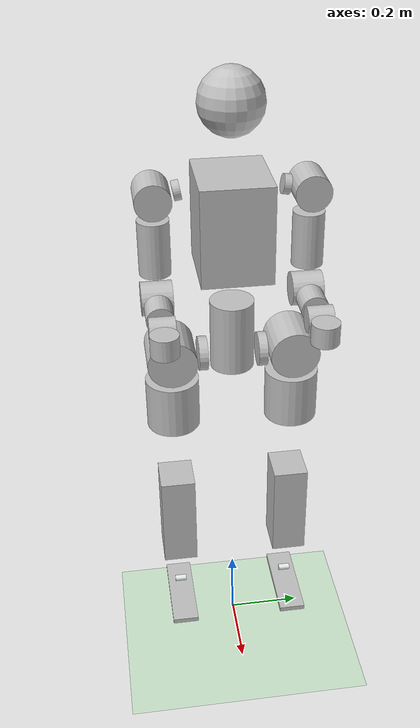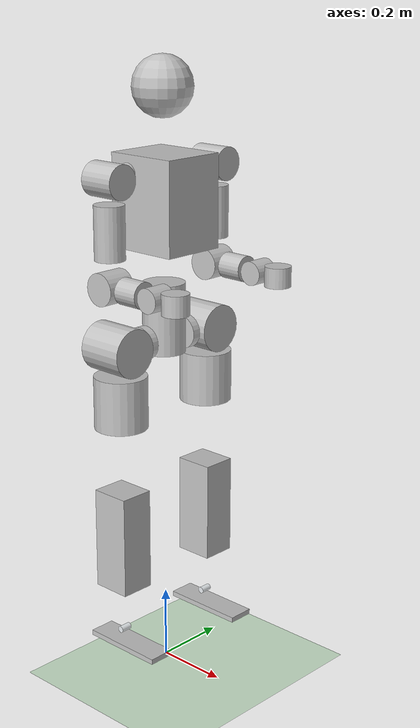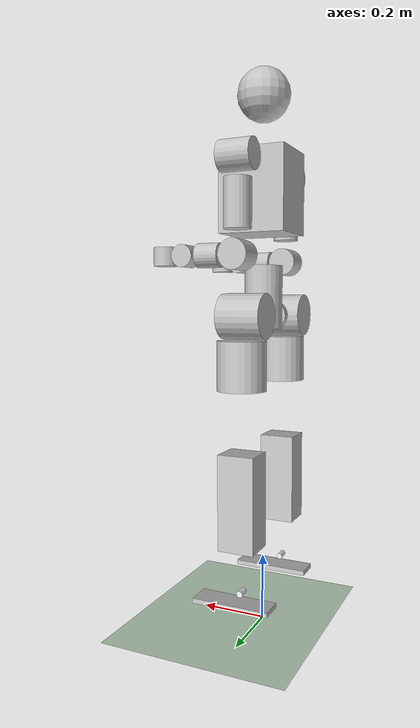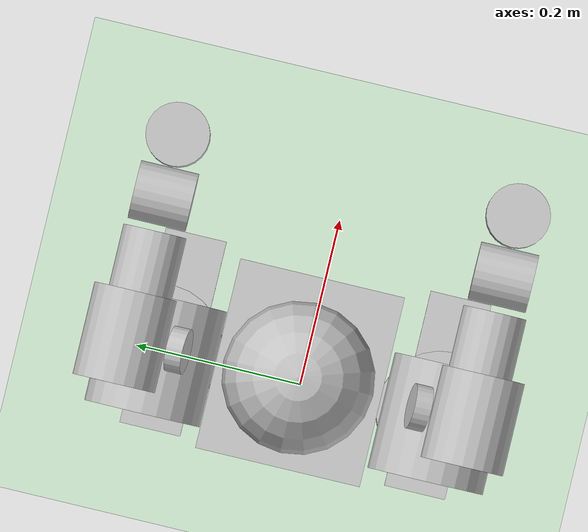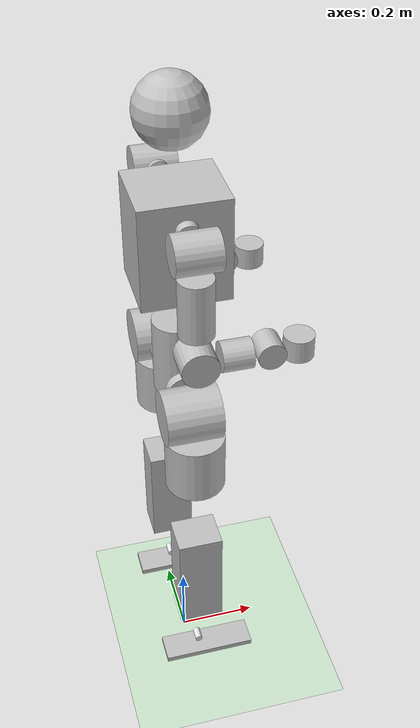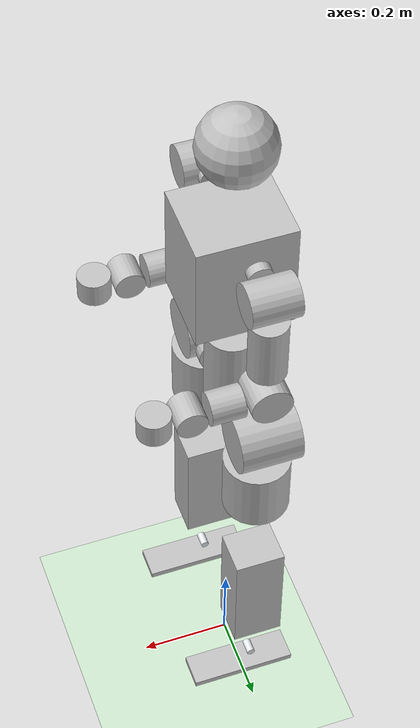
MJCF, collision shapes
<mujoco model="lus2">
    <compiler angle="radian" meshdir="../meshes/"/>

    <default>
        <default class="lus2">
            <geom friction="0.5" margin="0.001"/>
            <joint type="hinge" damping="1" armature="0.1" frictionloss="0.1" limited="true"/>
            <motor ctrlrange="-200 200" />
            <default class="visual">
                <geom type="mesh" contype="0" conaffinity="0" group="2" material="dark"/>
            </default>
            <default class="collision">
                <geom group="0" type="capsule" mass="0" density="0" />
                <default class="foot">
                    <geom type="sphere" priority="1" solimp="0.015 1 0.031" condim="6"  friction="0.8 0.02 0.01" size="0.025" pos="0.019 0 -0.105" quat="1 0 0 0" rgba="0.189804 0.176471 0.129412 1" />
                </default>
            </default>
            <site size="0.001" rgba="0.5 0.5 0.5 0.3" group="4"/>
        </default>
    </default>

    <asset>
        <mesh name="pelvis" content_type="model/stl" file="pelvis.STL"/>
        <mesh name="left_hip_pitch_link" content_type="model/stl" file="left_hip_pitch_link.STL"/>
        <mesh name="left_hip_roll_link" content_type="model/stl" file="left_hip_roll_link.STL"/>
        <mesh name="left_hip_yaw_link" content_type="model/stl" file="left_hip_yaw_link.STL"/>
        <mesh name="left_knee_link" content_type="model/stl" file="left_knee_link.STL"/>
        <mesh name="left_ankle_pitch_link" content_type="model/stl" file="left_ankle_pitch_link.STL"/>
        <mesh name="left_ankle_roll_link" content_type="model/stl" file="left_ankle_roll_link.STL"/>
        <mesh name="right_hip_pitch_link" content_type="model/stl" file="right_hip_pitch_link.STL"/>
        <mesh name="right_hip_roll_link" content_type="model/stl" file="right_hip_roll_link.STL"/>
        <mesh name="right_hip_yaw_link" content_type="model/stl" file="right_hip_yaw_link.STL"/>
        <mesh name="right_knee_link" content_type="model/stl" file="right_knee_link.STL"/>
        <mesh name="right_ankle_pitch_link" content_type="model/stl" file="right_ankle_pitch_link.STL"/>
        <mesh name="right_ankle_roll_link" content_type="model/stl" file="right_ankle_roll_link.STL"/>
        <mesh name="torso_link" content_type="model/stl" file="torso_link.STL"/>
        <mesh name="head_link" content_type="model/stl" file="head_link.STL"/>
        <mesh name="left_shoulder_pitch_link" content_type="model/stl" file="left_shoulder_pitch_link.STL"/>
        <mesh name="left_shoulder_roll_link" content_type="model/stl" file="left_shoulder_roll_link.STL"/>
        <mesh name="left_shoulder_yaw_link" content_type="model/stl" file="left_shoulder_yaw_link.STL"/>
        <mesh name="left_elbow_link" content_type="model/stl" file="left_elbow_link.STL"/>
        <mesh name="left_wrist_yaw_link" content_type="model/stl" file="left_wrist_yaw_link.STL"/>
        <mesh name="left_wrist_pitch_link" content_type="model/stl" file="left_wrist_pitch_link.STL"/>
        <mesh name="left_wrist_roll_link" content_type="model/stl" file="left_wrist_roll_link.STL"/>
        <mesh name="right_shoulder_pitch_link" content_type="model/stl" file="right_shoulder_pitch_link.STL"/>
        <mesh name="right_shoulder_roll_link" content_type="model/stl" file="right_shoulder_roll_link.STL"/>
        <mesh name="right_shoulder_yaw_link" content_type="model/stl" file="right_shoulder_yaw_link.STL"/>
        <mesh name="right_elbow_link" content_type="model/stl" file="right_elbow_link.STL"/>
        <mesh name="right_wrist_yaw_link" content_type="model/stl" file="right_wrist_yaw_link.STL"/>
        <mesh name="right_wrist_pitch_link" content_type="model/stl" file="right_wrist_pitch_link.STL"/>
        <mesh name="right_wrist_roll_link" content_type="model/stl" file="right_wrist_roll_link.STL"/>

        <texture name="texplane" type="2d" builtin="checker" rgb1=".2 .3 .4" rgb2=".1 0.15 0.2" width="100" height="100"/>
        <material name="MatPlane" reflectance="0.5" texture="texplane" texrepeat="1 1" texuniform="true"/>
    </asset>

    <worldbody>

            <geom name="floor" friction="1 .1 .1" pos="0 0 0" size="500 500 0.125" type="plane" material="MatPlane" condim="3" conaffinity="1" contype="1" group="2" rgba="0.8 0.9 0.8 1"></geom>

            <light cutoff="100" diffuse="1 1 1" dir="-0 0 -1.3" directional="true" exponent="1" pos="0 0 1.3" specular=".1 .1 .1" castshadow="false"/>
            <body name="pelvis" pos="0 0 1.0" childclass="lus2">
                <inertial pos="-3.1659855E-03  0.0000000 -0.0930236E-01" quat="0.498303 0.499454 -0.500496 0.501741" mass="6.7964049" diaginertia="2.2011165e-02 3.9641975e-02 3.5762219e-02" />
                <joint name="floating_base_joint" type="free" limited="false" actuatorfrclimited="false"/>
                <site name='imu' size='0.01' pos='0.0 0 0.0'/>

                <!-- fill below content to finish urdf2mjcf -->

                <geom pos="0 0 0.1" quat="1 0 0 0" type="mesh" contype="0" conaffinity="0" group="1" density="0" rgba="0.752941 0.752941 0.752941 1" mesh="pelvis"/>
                <geom size="0.0572 0.09415" type="cylinder" rgba="0.752941 0.752941 0.752941 1"/>
                <body name="left_hip_pitch_link" pos="0 0.068 -0.056">
                    <inertial pos="-0.0201683 0.0822161 0" quat="0.704101 0.704101 0.0651255 0.0651255" mass="2.42773" diaginertia="0.00623422 0.00516186 0.00352913"/>
                    <joint name="left_hip_pitch_joint" pos="0 0 0" axis="0 1 0" range="-1.5 1.5" actuatorfrcrange="-380 380"/>
                    <geom type="mesh" contype="0" conaffinity="0" group="1" density="0" rgba="0.752941 0.752941 0.752941 1" mesh="left_hip_pitch_link"/>
                    <geom size="0.045 0.0117" pos="0 0.01 0" quat="0.707388 0.706825 0 0" type="cylinder" rgba="0.752941 0.752941 0.752941 1"/>
                    <body name="left_hip_roll_link" pos="0 0.092 0">
                        <inertial pos="-0.00231162 -0.00036364 -0.081422" quat="0.986446 -0.0128273 0.163575 0.00198067" mass="3.15516" diaginertia="0.0127869 0.0114832 0.00651926"/>
                        <joint name="left_hip_roll_joint" pos="0 0 0" axis="1 0 0" range="-0.25 2.8" actuatorfrcrange="-380 380"/>
                        <geom type="mesh" contype="0" conaffinity="0" group="1" density="0" rgba="0.752941 0.752941 0.752941 1" mesh="left_hip_roll_link"/>
                        <geom size="0.065 0.065" pos="-0.01 0 0" quat="0.707388 0 0.706825 0" type="cylinder" rgba="0.752941 0.752941 0.752941 1"/>
                        <body name="left_hip_yaw_link" pos="0 0 -0.1395">
                            <inertial pos="0.00642805 -0.00358464 -0.184496" quat="0.693667 -0.00118225 0.0183074 0.720062" mass="3.35223" diaginertia="0.0396254 0.0381203 0.0071533"/>
                            <joint name="left_hip_yaw_joint" pos="0 0 0" axis="0 0 1" range="-1.2 2.6" actuatorfrcrange="-380 380"/>
                            <geom type="mesh" contype="0" conaffinity="0" group="1" density="0" rgba="0.752941 0.752941 0.752941 1" mesh="left_hip_yaw_link"/>
                            <geom size="0.0708 0.071" type="cylinder" rgba="0.752941 0.752941 0.752941 1"/>
                            <body name="left_knee_link" pos="0 0 -0.26">
                                <inertial pos="0.00978041 -0.00121598 -0.110007" quat="0.690926 0.000275879 -0.0112168 0.722838" mass="5.38282" diaginertia="0.0720794 0.0710269 0.00814125"/>
                                <joint name="left_knee_joint" pos="0 0 0" axis="0 1 0" range="0 2.27" actuatorfrcrange="-380 380"/>
                                <geom type="mesh" contype="0" conaffinity="0" group="1" density="0" rgba="0.752941 0.752941 0.752941 1" mesh="left_knee_link"/>
                                <geom size="0.0545 0.0475 0.139" pos="0 0 -0.13" type="box" rgba="0.752941 0.752941 0.752941 1"/>
                                <body name="left_ankle_pitch_link" pos="0 0 -0.4">
                                    <inertial pos="-0.000310026 1.10617e-05 -0.0042516" quat="0.691176 0.691169 0.149264 -0.14927" mass="0.163759" diaginertia="5.58316e-05 5.50037e-05 2.3119e-05"/>
                                    <joint name="left_ankle_pitch_joint" pos="0 0 0" axis="0 1 0" range="-0.34 0.17" actuatorfrcrange="-200 200"/>
                                    <geom type="mesh" contype="0" conaffinity="0" group="1" density="0" rgba="0.898039 0.917647 0.929412 1" mesh="left_ankle_pitch_link"/>
                                    <geom size="0.009 0.016" quat="0.707388 0.706825 0 0" type="cylinder" rgba="0.898039 0.917647 0.929412 1"/>
                                    <body name="left_ankle_roll_link" pos="0 0 -0.01">
                                        <inertial pos="0.0178042 0 -0.022945" quat="0 0.734587 0 0.678514" mass="0.328402" diaginertia="0.00147826 0.00138491 0.000224893"/>
                                        <joint name="left_ankle_roll_joint" pos="0 0 0" axis="1 0 0" range="-0.26 0.26" actuatorfrcrange="-200 200"/>
                                        <geom type="mesh" contype="0" conaffinity="0" group="1" density="0" rgba="0.752941 0.752941 0.752941 1" mesh="left_ankle_roll_link"/>
                                        <geom size="0.1175 0.0365 0.00715" pos="0.025 0 -0.02585" type="box" rgba="0.752941 0.752941 0.752941 1"/>
                                    </body>
                                </body>
                            </body>
                        </body>
                    </body>
                </body>
                <body name="right_hip_pitch_link" pos="0 -0.068 -0.056">
                    <inertial pos="-0.0201683 -0.0822161 0" quat="0.704101 0.704101 -0.0651255 -0.0651255" mass="2.42773" diaginertia="0.00623422 0.00516186 0.00352913"/>
                    <joint name="right_hip_pitch_joint" pos="0 0 0" axis="0 1 0" range="-1.5 1.5" actuatorfrcrange="-380 380"/>
                    <geom type="mesh" contype="0" conaffinity="0" group="1" density="0" rgba="0.752941 0.752941 0.752941 1" mesh="right_hip_pitch_link"/>
                    <geom size="0.045 0.0117" pos="0 -0.01 0" quat="0.707388 0.706825 0 0" type="cylinder" rgba="0.752941 0.752941 0.752941 1"/>
                    <body name="right_hip_roll_link" pos="0 -0.092 0">
                        <inertial pos="-0.00231164 0.000363676 -0.0814221" quat="0.986446 0.0128271 0.163575 -0.00197953" mass="3.15516" diaginertia="0.0127868 0.0114832 0.00651926"/>
                        <joint name="right_hip_roll_joint" pos="0 0 0" axis="1 0 0" range="-2.8 0.25" actuatorfrcrange="-380 380"/>
                        <geom type="mesh" contype="0" conaffinity="0" group="1" density="0" rgba="0.752941 0.752941 0.752941 1" mesh="right_hip_roll_link"/>
                        <geom size="0.065 0.065" pos="-0.01 0 0" quat="0.707388 0 0.706825 0" type="cylinder" rgba="0.752941 0.752941 0.752941 1"/>
                        <body name="right_hip_yaw_link" pos="0 0 -0.1395">
                            <inertial pos="0.00642805 0.00358464 -0.184496" quat="0.720062 0.0183074 -0.00118225 0.693667" mass="3.35223" diaginertia="0.0396254 0.0381203 0.0071533"/>
                            <joint name="right_hip_yaw_joint" pos="0 0 0" axis="0 0 1" range="-2.6 1.2" actuatorfrcrange="-380 380"/>
                            <geom type="mesh" contype="0" conaffinity="0" group="1" density="0" rgba="0.752941 0.752941 0.752941 1" mesh="right_hip_yaw_link"/>
                            <geom size="0.0708 0.071" type="cylinder" rgba="0.752941 0.752941 0.752941 1"/>
                            <body name="right_knee_link" pos="0 0 -0.26">
                                <inertial pos="0.00978041 0.00121598 -0.110007" quat="0.722838 -0.0112168 0.00027589 0.690926" mass="5.38282" diaginertia="0.0720794 0.0710269 0.00814125"/>
                                <joint name="right_knee_joint" pos="0 0 0" axis="0 1 0" range="0 2.27" actuatorfrcrange="-380 380"/>
                                <geom type="mesh" contype="0" conaffinity="0" group="1" density="0" rgba="0.752941 0.752941 0.752941 1" mesh="right_knee_link"/>
                                <geom size="0.0545 0.0475 0.139" pos="0 0 -0.13" type="box" rgba="0.752941 0.752941 0.752941 1"/>
                                <body name="right_ankle_pitch_link" pos="0 0 -0.4">
                                    <inertial pos="-0.000310026 1.10617e-05 -0.0042516" quat="0.691176 0.691169 0.149264 -0.14927" mass="0.163759" diaginertia="5.58316e-05 5.50037e-05 2.3119e-05"/>
                                    <joint name="right_ankle_pitch_joint" pos="0 0 0" axis="0 1 0" range="-0.34 0.17" actuatorfrcrange="-200 200"/>
                                    <geom type="mesh" contype="0" conaffinity="0" group="1" density="0" rgba="0.898039 0.917647 0.929412 1" mesh="right_ankle_pitch_link"/>
                                    <geom size="0.009 0.016" quat="0.707388 0.706825 0 0" type="cylinder" rgba="0.898039 0.917647 0.929412 1"/>
                                    <body name="right_ankle_roll_link" pos="0 0 -0.01">
                                        <inertial pos="0.0178042 0 -0.022945" quat="0 0.734587 0 0.678514" mass="0.328402" diaginertia="0.00147826 0.00138491 0.000224893"/>
                                        <joint name="right_ankle_roll_joint" pos="0 0 0" axis="1 0 0" range="-0.26 0.26" actuatorfrcrange="-200 200"/>
                                        <geom type="mesh" contype="0" conaffinity="0" group="1" density="0" rgba="0.752941 0.752941 0.752941 1" mesh="right_ankle_roll_link"/>
                                        <geom size="0.1175 0.0365 0.00715" pos="0.025 0 -0.02585" type="box" rgba="0.752941 0.752941 0.752941 1"/>
                                    </body>
                                </body>
                            </body>
                        </body>
                    </body>
                </body>
                <body name="torso_link" pos="0 0 0.1">

                    <site name="torso_site1" pos="-0.1 0.1 0.3" />
                    <site name="torso_site2" pos="-0.1 -0.1 0.3" />

                    <inertial pos="-0.00142182 0.000240176 0.254143" quat="0.999922 -0.00157977 -0.0120569 0.00275247" mass="11.5909" diaginertia="0.204443 0.180554 0.0681115"/>
                    <joint name="torso_joint" pos="0 0 0" axis="0 0 1" range="-3 3" actuatorfrcrange="-380 380"/>
                    <geom type="mesh" contype="0" conaffinity="0" group="1" density="0" rgba="0.752941 0.752941 0.752941 1" mesh="torso_link"/>
                    <geom size="0.1025 0.089 0.123" pos="0.0065 0 0.21" type="box" rgba="0.752941 0.752941 0.752941 1"/>
                    <geom pos="0 0 0.3875" quat="1 0 0 0" type="mesh" contype="0" conaffinity="0" group="1" density="0" rgba="0.752941 0.752941 0.752941 1" mesh="head_link"/>
                    <geom size="0.08" pos="0 0 0.4975" rgba="0.752941 0.752941 0.752941 1"/>
                    <body name="left_shoulder_pitch_link" pos="0 0.12095 0.29712" quat="0.996195 -0.0871543 0 0">
                        <inertial pos="-0.0254614 0.0534578 -5.75839e-07" quat="0.702171 0.702182 0.0833408 0.0833656" mass="0.173115" diaginertia="0.000197536 0.000152139 9.0815e-05"/>
                        <joint name="left_shoulder_pitch_joint" pos="0 0 0" axis="0 1 0" range="-3 3" actuatorfrcrange="-100 100"/>
                        <geom type="mesh" contype="0" conaffinity="0" group="1" density="0" rgba="0.752941 0.752941 0.752941 1" mesh="left_shoulder_pitch_link"/>
                        <geom size="0.0244 0.009" pos="0 0.01 0" quat="0.707388 0.706825 0 0" type="cylinder" rgba="0.752941 0.752941 0.752941 1"/>
                        <body name="left_shoulder_roll_link" pos="0 0.0695 0" quat="0.996195 0.0871543 0 0">
                            <inertial pos="0.00112286 -4.52209e-05 -0.067975" quat="0.999793 0.00155022 -0.0201616 0.00208659" mass="0.364745" diaginertia="0.000924429 0.000788402 0.000365403"/>
                            <joint name="left_shoulder_roll_joint" pos="0 0 0" axis="1 0 0" range="-0.12 2.3" actuatorfrcrange="-100 100"/>
                            <geom type="mesh" contype="0" conaffinity="0" group="1" density="0" rgba="0.752941 0.752941 0.752941 1" mesh="left_shoulder_roll_link"/>
                            <geom size="0.0447 0.05" quat="0.707388 0 0.706825 0" type="cylinder" rgba="0.752941 0.752941 0.752941 1"/>
                            <body name="left_shoulder_yaw_link" pos="0 0 -0.13">
                                <inertial pos="-0.00081064 -0.00072673 -0.105837" quat="0.693666 -0.00598888 0.000250759 0.720272" mass="1.12432" diaginertia="0.00391994 0.00383464 0.000723036"/>
                                <joint name="left_shoulder_yaw_joint" pos="0 0 0" axis="0 0 1" range="-1.9 1.9" actuatorfrcrange="-100 100"/>
                                <geom type="mesh" contype="0" conaffinity="0" group="1" density="0" rgba="0.752941 0.752941 0.752941 1" mesh="left_shoulder_yaw_link"/>
                                <geom size="0.03968 0.07" type="cylinder" rgba="0.752941 0.752941 0.752941 1"/>
                                <body name="left_elbow_link" pos="0 0 -0.14" quat="0.707388 0 -0.706825 0">
                                    <inertial pos="-0.00152308 -0.00155026 -0.0668646" quat="0.992371 -0.0434666 0.063854 0.0960856" mass="0.593099" diaginertia="0.000843319 0.0008126 0.000468311"/>
                                    <joint name="left_elbow_joint" pos="0 0 0" axis="0 1 0" range="-0.83 1.57" actuatorfrcrange="-100 100"/>
                                    <geom type="mesh" contype="0" conaffinity="0" group="1" density="0" rgba="0.752941 0.752941 0.752941 1" mesh="left_elbow_link"/>
                                    <geom size="0.043 0.0395" quat="0.707388 0.706825 0 0" type="cylinder" rgba="0.752941 0.752941 0.752941 1"/>
                                    <body name="left_wrist_yaw_link" pos="0 0 -0.0955">
                                        <inertial pos="0.00020795 -0.00477305 -0.0659639" quat="0.709413 -0.101584 -0.105057 0.689476" mass="0.36396" diaginertia="0.000192068 0.000133146 0.000131356"/>
                                        <joint name="left_wrist_yaw_joint" pos="0 0 0" axis="0 0 1" range="-2.3 2.3" actuatorfrcrange="-20 20"/>
                                        <geom type="mesh" contype="0" conaffinity="0" group="1" density="0" rgba="0.752941 0.752941 0.752941 1" mesh="left_wrist_yaw_link"/>
                                        <geom size="0.035 0.035" pos="0 0 0.01" type="cylinder" rgba="0.752941 0.752941 0.752941 1"/>
                                        <body name="left_wrist_pitch_link" pos="0 0 -0.0645">
                                            <inertial pos="-0.00480941 -0.00060521 -0.0582503" quat="0.99617 -0.0667976 -0.0505555 -0.0250494" mass="0.471098" diaginertia="0.000388022 0.000316156 0.000229722"/>
                                            <joint name="left_wrist_pitch_joint" pos="0 0 0" axis="0 1 0" range="-1.2 1.2" actuatorfrcrange="-20 20"/>
                                            <geom type="mesh" contype="0" conaffinity="0" group="1" density="0" rgba="0.752941 0.752941 0.752941 1" mesh="left_wrist_pitch_link"/>
                                            <geom size="0.032 0.032" quat="0.707388 0.706825 0 0" type="cylinder" rgba="0.752941 0.752941 0.752941 1"/>
                                            <body name="left_wrist_roll_link" pos="0 0 -0.068">
                                                <inertial pos="0.0191604 -1.17e-06 -0.023948" quat="0.683304 -0.181921 -0.181921 0.683304" mass="0.0380932" diaginertia="2.008e-05 1.90086e-05 7.00137e-06"/>
                                                <joint name="left_wrist_roll_joint" pos="0 0 0" axis="1 0 0" range="-1.2 1.2" actuatorfrcrange="-20 20"/>
                                                <geom type="mesh" contype="0" conaffinity="0" group="1" density="0" rgba="0.752941 0.752941 0.752941 1" mesh="left_wrist_roll_link"/>
                                                <geom size="0.035 0.027" quat="0.707388 0 0.706825 0" type="cylinder" rgba="0.752941 0.752941 0.752941 1"/>
                                            </body>
                                        </body>
                                    </body>
                                </body>
                            </body>
                        </body>
                    </body>
                    <body name="right_shoulder_pitch_link" pos="0 -0.12095 0.29712" quat="0.996195 0.0871543 0 0">
                        <inertial pos="-0.0254614 -0.0534578 6.93877e-07" quat="0.702166 0.702188 -0.0833419 -0.0833635" mass="0.173115" diaginertia="0.00019754 0.00015214 9.08183e-05"/>
                        <joint name="right_shoulder_pitch_joint" pos="0 0 0" axis="0 1 0" range="-3 3" actuatorfrcrange="-100 100"/>
                        <geom type="mesh" contype="0" conaffinity="0" group="1" density="0" rgba="0.752941 0.752941 0.752941 1" mesh="right_shoulder_pitch_link"/>
                        <geom size="0.0244 0.009" pos="0 -0.01 0" quat="0.707388 0.706825 0 0" type="cylinder" rgba="0.752941 0.752941 0.752941 1"/>
                        <body name="right_shoulder_roll_link" pos="0 -0.0695 0" quat="0.996195 -0.0871543 0 0">
                            <inertial pos="0.00112483 5.05515e-05 -0.0679738" quat="0.999794 -0.0015408 -0.0201519 -0.00208832" mass="0.364802" diaginertia="0.00092448 0.000788455 0.000365414"/>
                            <joint name="right_shoulder_roll_joint" pos="0 0 0" axis="1 0 0" range="-2.3 0.12" actuatorfrcrange="-100 100"/>
                            <geom type="mesh" contype="0" conaffinity="0" group="1" density="0" rgba="0.752941 0.752941 0.752941 1" mesh="right_shoulder_roll_link"/>
                            <geom size="0.0447 0.05" quat="0.707388 0 0.706825 0" type="cylinder" rgba="0.752941 0.752941 0.752941 1"/>
                            <body name="right_shoulder_yaw_link" pos="0 0 -0.13">
                                <inertial pos="-0.00081059 0.00072671 -0.105749" quat="0.720253 0.0003316 -0.00594525 0.693686" mass="1.12432" diaginertia="0.00391319 0.00382787 0.000723043"/>
                                <joint name="right_shoulder_yaw_joint" pos="0 0 0" axis="0 0 1" range="-1.9 1.9" actuatorfrcrange="-100 100"/>
                                <geom type="mesh" contype="0" conaffinity="0" group="1" density="0" rgba="0.752941 0.752941 0.752941 1" mesh="right_shoulder_yaw_link"/>
                                <geom size="0.03968 0.07" type="cylinder" rgba="0.752941 0.752941 0.752941 1"/>
                                <body name="right_elbow_link" pos="0 0 -0.14" quat="0.707388 0 -0.706825 0">
                                    <inertial pos="-0.00139017 0.0014914 -0.066865" quat="0.992139 0.0427742 0.0625601 -0.0995795" mass="0.593091" diaginertia="0.00084363 0.000812263 0.000468977"/>
                                    <joint name="right_elbow_joint" pos="0 0 0" axis="0 1 0" range="-0.83 1.57" actuatorfrcrange="-100 100"/>
                                    <geom type="mesh" contype="0" conaffinity="0" group="1" density="0" rgba="0.752941 0.752941 0.752941 1" mesh="right_elbow_link"/>
                                    <geom size="0.043 0.0395" quat="0.707388 0.706825 0 0" type="cylinder" rgba="0.752941 0.752941 0.752941 1"/>
                                    <body name="right_wrist_yaw_link" pos="0 0 -0.0955">
                                        <inertial pos="-0.00020795 0.00477305 -0.0659639" quat="0.709413 0.101584 0.105057 0.689476" mass="0.36396" diaginertia="0.000192068 0.000133146 0.000131356"/>
                                        <joint name="right_wrist_yaw_joint" pos="0 0 0" axis="0 0 1" range="-2.3 2.3" actuatorfrcrange="-20 20"/>
                                        <geom type="mesh" contype="0" conaffinity="0" group="1" density="0" rgba="0.752941 0.752941 0.752941 1" mesh="right_wrist_yaw_link"/>
                                        <geom size="0.035 0.035" pos="0 0 0.01" type="cylinder" rgba="0.752941 0.752941 0.752941 1"/>
                                        <body name="right_wrist_pitch_link" pos="0 0 -0.0645">
                                            <inertial pos="-0.0048094 0.00036052 -0.058458" quat="0.996274 0.0735022 -0.0442922 0.00858283" mass="0.471098" diaginertia="0.000388936 0.000316854 0.00023094"/>
                                            <joint name="right_wrist_pitch_joint" pos="0 0 0" axis="0 1 0" range="-1.2 1.2" actuatorfrcrange="-20 20"/>
                                            <geom type="mesh" contype="0" conaffinity="0" group="1" density="0" rgba="0.752941 0.752941 0.752941 1" mesh="right_wrist_pitch_link"/>
                                            <geom size="0.032 0.032" quat="0.707388 0.706825 0 0" type="cylinder" rgba="0.752941 0.752941 0.752941 1"/>
                                            <body name="right_wrist_roll_link" pos="0 0 -0.068">
                                                <inertial pos="0.0191604 -1.17e-06 -0.023948" quat="0.683304 -0.181921 -0.181921 0.683304" mass="0.0380932" diaginertia="2.008e-05 1.90086e-05 7.00137e-06"/>
                                                <joint name="right_wrist_roll_joint" pos="0 0 0" axis="1 0 0" range="-1.2 1.2" actuatorfrcrange="-20 20"/>
                                                <geom type="mesh" contype="0" conaffinity="0" group="1" density="0" rgba="0.752941 0.752941 0.752941 1" mesh="right_wrist_roll_link"/>
                                                <geom size="0.035 0.027" quat="0.707388 0 0.706825 0" type="cylinder" rgba="0.752941 0.752941 0.752941 1"/>
                                            </body>
                                        </body>
                                    </body>
                                </body>
                            </body>
                        </body>
                    </body>
                </body>
                <!-- fill above segment -->
            </body>
        </worldbody>

        <actuator>
            <motor name="left_hip_pitch_joint" joint="left_hip_pitch_joint" gear="1" ctrllimited="true" ctrlrange="-380 380"/>
            <motor name="left_hip_roll_joint" joint="left_hip_roll_joint" gear="1" ctrllimited="true" ctrlrange="-380 380"/>
            <motor name="left_hip_yaw_joint" joint="left_hip_yaw_joint" gear="1" ctrllimited="true" ctrlrange="-380 380" />
            <motor name="left_knee_joint" joint="left_knee_joint" gear="1" ctrllimited="true" ctrlrange="-380 380"/>
            <motor name="left_ankle_pitch_joint" joint="left_ankle_pitch_joint" gear="1" ctrllimited="true" ctrlrange="-380 380"/>
            <motor name="left_ankle_roll_joint" joint="left_ankle_roll_joint" gear="1" ctrllimited="true" ctrlrange="-380 380"/>

            <motor name="right_hip_pitch_joint" joint="right_hip_pitch_joint" gear="1" ctrllimited="true" ctrlrange="-380 380"/>
            <motor name="right_hip_roll_joint" joint="right_hip_roll_joint" gear="1" ctrllimited="true" ctrlrange="-380 380"/>
            <motor name="right_hip_yaw_joint" joint="right_hip_yaw_joint" gear="1" ctrllimited="true" ctrlrange="-380 380"/>
            <motor name="right_knee_joint" joint="right_knee_joint" gear="1" ctrllimited="true" ctrlrange="-380 380" />
            <motor name="right_ankle_pitch_joint" joint="right_ankle_pitch_joint" gear="1" ctrllimited="true" ctrlrange="-380 380" />
            <motor name="right_ankle_roll_joint" joint="right_ankle_roll_joint" gear="1" ctrllimited="true" ctrlrange="-380 380" />

            <motor name="torso_joint" joint="torso_joint" gear="1" ctrllimited="true" ctrlrange="-380 380" />

            <motor name="left_shoulder_pitch_joint" joint="left_shoulder_pitch_joint" gear="1" ctrllimited="true" ctrlrange="-380 380" />
            <motor name="left_shoulder_roll_joint" joint="left_shoulder_roll_joint" gear="1" ctrllimited="true" ctrlrange="-380 380" />
            <motor name="left_shoulder_yaw_joint" joint="left_shoulder_yaw_joint" gear="1" ctrllimited="true" ctrlrange="-380 380" />
            <motor name="left_elbow_joint" joint="left_elbow_joint" gear="1" ctrllimited="true" ctrlrange="-380 380" />
            <motor name="left_wrist_yaw_joint" joint="left_wrist_yaw_joint" gear="1" ctrllimited="true" ctrlrange="-380 380" />
            <motor name="left_wrist_pitch_joint" joint="left_wrist_pitch_joint" gear="1" ctrllimited="true" ctrlrange="-380 380" />
            <motor name="left_wrist_roll_joint" joint="left_wrist_roll_joint" gear="1" ctrllimited="true" ctrlrange="-380 380" />

            <motor name="right_shoulder_pitch_joint" joint="right_shoulder_pitch_joint" gear="1" ctrllimited="true" ctrlrange="-380 380" />
            <motor name="right_shoulder_roll_joint" joint="right_shoulder_roll_joint" gear="1" ctrllimited="true" ctrlrange="-380 380" />
            <motor name="right_shoulder_yaw_joint" joint="right_shoulder_yaw_joint" gear="1" ctrllimited="true" ctrlrange="-380 380" />
            <motor name="right_elbow_joint" joint="right_elbow_joint" gear="1" ctrllimited="true" ctrlrange="-380 380" />
            <motor name="right_wrist_yaw_joint" joint="right_wrist_yaw_joint" gear="1" ctrllimited="true" ctrlrange="-380 380" />
            <motor name="right_wrist_pitch_joint" joint="right_wrist_pitch_joint" gear="1" ctrllimited="true" ctrlrange="-380 380" />
            <motor name="right_wrist_roll_joint" joint="right_wrist_roll_joint" gear="1" ctrllimited="true" ctrlrange="-380 380" />

        </actuator>

        <sensor>
            <framequat     name='orientation' objtype='site' noise='0.001' objname='imu'/>
            <framepos     name='position' objtype='site' noise='0.001' objname='imu'/>
            <gyro          name='angular-velocity'    site='imu' noise='0.005' cutoff='34.9'/>
            <velocimeter   name='linear-velocity'     site='imu' noise='0.001' cutoff='30'/>
            <accelerometer name='linear-acceleration' site='imu' noise='0.005' cutoff='157'/>
            <magnetometer  name='magnetometer'        site='imu'/>
        </sensor>

        </mujoco>
